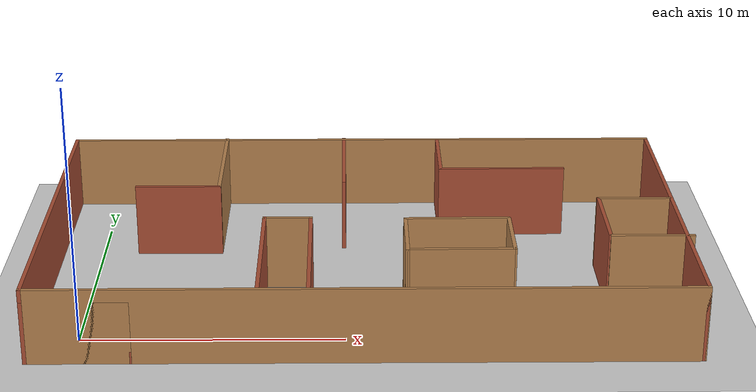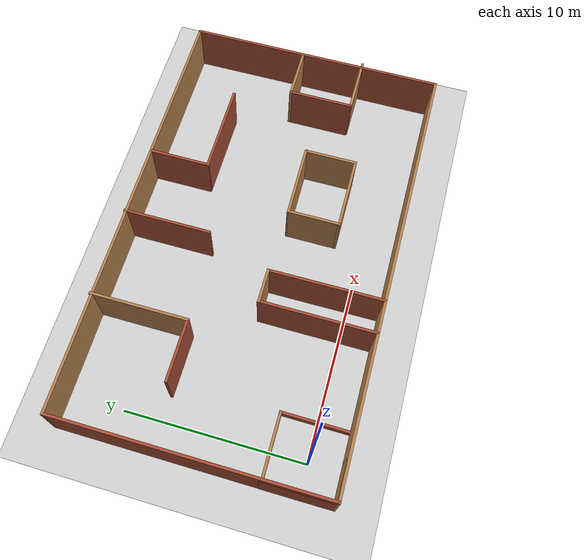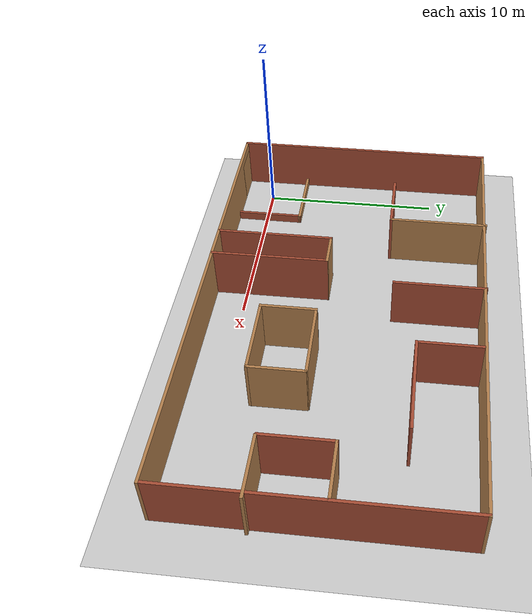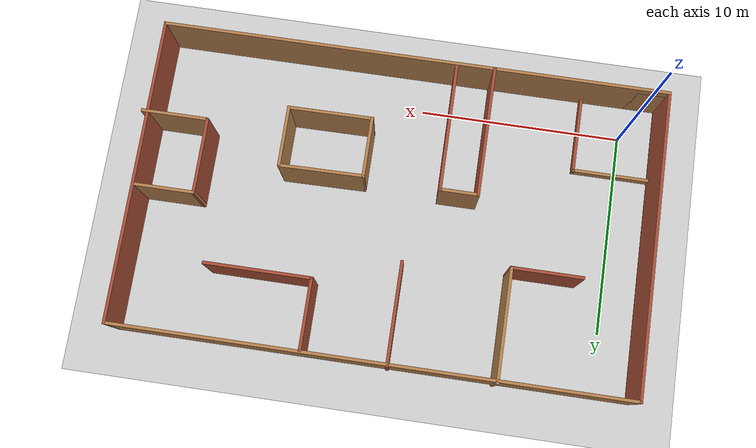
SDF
<sdf version="1.6">
 <world name="default">
  <light name="sun" type="directional">
   <pose>0 0 10 0 -0 0</pose>
   <diffuse>0.8 0.8 0.8 1</diffuse>
   <specular>0.2 0.2 0.2 1</specular>
   <attenuation>
    <range>1000</range>
    <constant>0.9</constant>
    <linear>0.01</linear>
    <quadratic>0.001</quadratic>
   </attenuation>
   <direction>-0.5 0.1 -0.9</direction>
  </light>
  <model name="ground_plane">
   <static>1</static>
   <link name="link">
    <collision name="collision">
     <geometry><plane><normal>0 0 1</normal><size>100 100</size></plane></geometry>
     <surface>
      <contact><collide_bitmask>65535</collide_bitmask></contact>
      <friction><ode><mu>100</mu><mu2>50</mu2></ode></friction>
     </surface>
    </collision>
    <visual name="visual">
     <cast_shadows>0</cast_shadows>
     <geometry><plane><normal>0 0 1</normal><size>100 100</size></plane></geometry>
     <material>
      <script><uri>file://media/materials/scripts/gazebo.material</uri><name>Gazebo/Grey</name></script>
     </material>
    </visual>
   </link>
  </model>
  <gravity>0 0 -9.8</gravity>
  <magnetic_field>6e-06 2.3e-05 -4.2e-05</magnetic_field>
  <atmosphere type="adiabatic"/>
  <physics name="default_physics" default="0" type="ode">
   <ode>
    <solver>
     <type>quick</type>
     <iters>10</iters>
     <sor>1.3</sor>
     <use_dynamic_moi_rescaling>0</use_dynamic_moi_rescaling>
    </solver>
    <constraints>
     <cfm>0</cfm>
     <erp>0.2</erp>
     <contact_max_correcting_vel>100</contact_max_correcting_vel>
     <contact_surface_layer>0.001</contact_surface_layer>
    </constraints>
   </ode>
   <max_step_size>0.004</max_step_size>
   <real_time_factor>1</real_time_factor>
   <real_time_update_rate>250</real_time_update_rate>
  </physics>
  <scene><ambient>0.4 0.4 0.4 1</ambient><background>0.7 0.7 0.7 1</background><shadows>1</shadows></scene>
  <spherical_coordinates>
   <surface_model>EARTH_WGS84</surface_model>
   <latitude_deg>0</latitude_deg>
   <longitude_deg>0</longitude_deg>
   <elevation>0</elevation>
   <heading_deg>0</heading_deg>
  </spherical_coordinates>
  <model name="explore2">
   <pose>10.808 5.68041 0 0 -0 0</pose>
   <link name="Wall_10">
    <collision name="Wall_10_Collision">
     <geometry><box><size>3.9659 0.15 2.5</size></box></geometry>
     <pose>0 0 1.25 0 -0 0</pose>
    </collision>
    <visual name="Wall_10_Visual">
     <pose>0 0 1.25 0 -0 0</pose>
     <geometry><box><size>3.9659 0.15 2.5</size></box></geometry>
     <material>
      <script><uri>file://media/materials/scripts/gazebo.material</uri><name>Gazebo/Bricks</name></script>
      <ambient>1 1 1 1</ambient>
     </material>
     <meta><layer>0</layer></meta>
    </visual>
    <pose>-12.5434 -5.55956 0 0 -0 1.57327</pose>
   </link>
   <link name="Wall_16">
    <collision name="Wall_16_Collision">
     <geometry><box><size>25 0.15 3</size></box></geometry>
     <pose>0 0 1.5 0 -0 0</pose>
    </collision>
    <visual name="Wall_16_Visual">
     <pose>0 0 1.5 0 -0 0</pose>
     <geometry><box><size>25 0.15 3</size></box></geometry>
     <material>
      <script><uri>file://media/materials/scripts/gazebo.material</uri><name>Gazebo/Wood</name></script>
      <ambient>1 1 1 1</ambient>
     </material>
     <meta><layer>0</layer></meta>
    </visual>
    <pose>-0.11382 -7.46731 0 0 -0 0</pose>
   </link>
   <link name="Wall_23">
    <collision name="Wall_23_Collision">
     <geometry><box><size>15 0.15 3</size></box></geometry>
     <pose>0 0 1.5 0 -0 0</pose>
    </collision>
    <visual name="Wall_23_Visual">
     <pose>0 0 1.5 0 -0 0</pose>
     <geometry><box><size>15 0.15 3</size></box></geometry>
     <material>
      <script><uri>file://media/materials/scripts/gazebo.material</uri><name>Gazebo/Bricks</name></script>
      <ambient>1 1 1 1</ambient>
     </material>
     <meta><layer>0</layer></meta>
    </visual>
    <pose>12.3111 -0.042311 0 0 -0 1.5708</pose>
   </link>
   <link name="Wall_25">
    <collision name="Wall_25_Collision">
     <geometry><box><size>25 0.15 3</size></box></geometry>
     <pose>0 0 1.5 0 -0 0</pose>
    </collision>
    <visual name="Wall_25_Visual">
     <pose>0 0 1.5 0 -0 0</pose>
     <geometry><box><size>25 0.15 3</size></box></geometry>
     <material>
      <script><uri>file://media/materials/scripts/gazebo.material</uri><name>Gazebo/Wood</name></script>
      <ambient>1 1 1 1</ambient>
     </material>
     <meta><layer>0</layer></meta>
    </visual>
    <pose>-0.11382 7.38269 0 0 -0 3.14159</pose>
   </link>
   <link name="Wall_27">
    <collision name="Wall_27_Collision">
     <geometry><box><size>15 0.15 3</size></box></geometry>
     <pose>0 0 1.5 0 -0 0</pose>
    </collision>
    <visual name="Wall_27_Visual">
     <pose>0 0 1.5 0 -0 0</pose>
     <geometry><box><size>15 0.15 3</size></box></geometry>
     <material>
      <script><uri>file://media/materials/scripts/gazebo.material</uri><name>Gazebo/Bricks</name></script>
      <ambient>1 1 1 1</ambient>
     </material>
     <meta><layer>0</layer></meta>
    </visual>
    <pose>-12.5387 -0.042311 0 0 -0 -1.5708</pose>
   </link>
   <link name="Wall_29">
    <collision name="Wall_29_Collision">
     <geometry><box><size>6.45734 0.15 3</size></box></geometry>
     <pose>0 0 1.5 0 -0 0</pose>
    </collision>
    <visual name="Wall_29_Visual">
     <pose>0 0 1.5 0 -0 0</pose>
     <geometry><box><size>6.45734 0.15 3</size></box></geometry>
     <material>
      <script><uri>file://media/materials/scripts/gazebo.material</uri><name>Gazebo/Bricks</name></script>
      <ambient>1 1 1 1</ambient>
     </material>
     <meta><layer>0</layer></meta>
    </visual>
    <pose>-4.0012 -4.26931 0 0 -0 1.57096</pose>
   </link>
   <link name="Wall_30">
    <collision name="Wall_30_Collision">
     <geometry><box><size>1.97366 0.15 3</size></box></geometry>
     <pose>0 0 1.5 0 -0 0</pose>
    </collision>
    <visual name="Wall_30_Visual">
     <pose>0 0 1.5 0 -0 0</pose>
     <geometry><box><size>1.97366 0.15 3</size></box></geometry>
     <material>
      <script><uri>file://media/materials/scripts/gazebo.material</uri><name>Gazebo/Wood</name></script>
      <ambient>1 1 1 1</ambient>
     </material>
     <meta><layer>0</layer></meta>
    </visual>
    <pose>-3.08969 -1.11531 0 0 -0 0</pose>
   </link>
   <link name="Wall_31">
    <collision name="Wall_31_Collision">
     <geometry><box><size>6.45734 0.15 3</size></box></geometry>
     <pose>0 0 1.5 0 -0 0</pose>
    </collision>
    <visual name="Wall_31_Visual">
     <pose>0 0 1.5 0 -0 0</pose>
     <geometry><box><size>6.45734 0.15 3</size></box></geometry>
     <material>
      <script><uri>file://media/materials/scripts/gazebo.material</uri><name>Gazebo/Bricks</name></script>
      <ambient>1 1 1 1</ambient>
     </material>
     <meta><layer>0</layer></meta>
    </visual>
    <pose>-2.16419 -4.26931 0 0 -0 -1.56652</pose>
   </link>
   <link name="Wall_33">
    <collision name="Wall_33_Collision">
     <geometry><box><size>5.5 0.15 3</size></box></geometry>
     <pose>0 0 1.5 0 -0 0</pose>
    </collision>
    <visual name="Wall_33_Visual">
     <pose>0 0 1.5 0 -0 0</pose>
     <geometry><box><size>5.5 0.15 3</size></box></geometry>
     <material>
      <script><uri>file://media/materials/scripts/gazebo.material</uri><name>Gazebo/Wood</name></script>
      <ambient>1 1 1 1</ambient>
     </material>
     <meta><layer>0</layer></meta>
    </visual>
    <pose>-5.9947 4.79269 0 0 -0 -1.5708</pose>
   </link>
   <link name="Wall_34">
    <collision name="Wall_34_Collision">
     <geometry><box><size>3.5 0.15 3</size></box></geometry>
     <pose>0 0 1.5 0 -0 0</pose>
    </collision>
    <visual name="Wall_34_Visual">
     <pose>0 0 1.5 0 -0 0</pose>
     <geometry><box><size>3.5 0.15 3</size></box></geometry>
     <material>
      <script><uri>file://media/materials/scripts/gazebo.material</uri><name>Gazebo/Bricks</name></script>
      <ambient>1 1 1 1</ambient>
     </material>
     <meta><layer>0</layer></meta>
    </visual>
    <pose>-7.66969 2.11769 0 0 -0 3.14159</pose>
   </link>
   <link name="Wall_38">
    <collision name="Wall_38_Collision">
     <geometry><box><size>3 0.15 3</size></box></geometry>
     <pose>0 0 1.5 0 -0 0</pose>
    </collision>
    <visual name="Wall_38_Visual">
     <pose>0 0 1.5 0 -0 0</pose>
     <geometry><box><size>3 0.15 3</size></box></geometry>
     <material>
      <script><uri>file://media/materials/scripts/gazebo.material</uri><name>Gazebo/Wood</name></script>
      <ambient>1 1 1 1</ambient>
     </material>
     <meta><layer>0</layer></meta>
    </visual>
    <pose>5.59631 -2.65031 0 0 -0 -1.5708</pose>
   </link>
   <link name="Wall_4">
    <collision name="Wall_4_Collision">
     <geometry><box><size>4 0.15 0.5</size></box></geometry>
     <pose>0 0 0.25 0 -0 0</pose>
    </collision>
    <visual name="Wall_4_Visual">
     <pose>0 0 0.25 0 -0 0</pose>
     <geometry><box><size>4 0.15 0.5</size></box></geometry>
     <material>
      <script><uri>file://media/materials/scripts/gazebo.material</uri><name>Gazebo/Wood</name></script>
      <ambient>1 1 1 1</ambient>
     </material>
     <meta><layer>0</layer></meta>
    </visual>
    <pose>-10.6116 -3.65181 0 0 -0 0</pose>
   </link>
   <link name="Wall_40">
    <collision name="Wall_40_Collision">
     <geometry><box><size>5 0.15 3</size></box></geometry>
     <pose>0 0 1.5 0 -0 0</pose>
    </collision>
    <visual name="Wall_40_Visual">
     <pose>0 0 1.5 0 -0 0</pose>
     <geometry><box><size>5 0.15 3</size></box></geometry>
     <material>
      <script><uri>file://media/materials/scripts/gazebo.material</uri><name>Gazebo/Bricks</name></script>
      <ambient>1 1 1 1</ambient>
     </material>
     <meta><layer>0</layer></meta>
    </visual>
    <pose>-0.889695 5.01769 0 0 -0 -1.5708</pose>
   </link>
   <link name="Wall_42">
    <collision name="Wall_42_Collision">
     <geometry><box><size>4.16537 0.15 3</size></box></geometry>
     <pose>0 0 1.5 0 -0 0</pose>
    </collision>
    <visual name="Wall_42_Visual">
     <pose>0 0 1.5 0 -0 0</pose>
     <geometry><box><size>4.16537 0.15 3</size></box></geometry>
     <material>
      <script><uri>file://media/materials/scripts/gazebo.material</uri><name>Gazebo/Wood</name></script>
      <ambient>1 1 1 1</ambient>
     </material>
     <meta><layer>0</layer></meta>
    </visual>
    <pose>3.54181 -1.19781 0 0 -0 0.013698</pose>
   </link>
   <link name="Wall_44">
    <collision name="Wall_44_Collision">
     <geometry><box><size>3.25 0.15 3</size></box></geometry>
     <pose>0 0 1.5 0 -0 0</pose>
    </collision>
    <visual name="Wall_44_Visual">
     <pose>0 0 1.5 0 -0 0</pose>
     <geometry><box><size>3.25 0.15 3</size></box></geometry>
     <material>
      <script><uri>file://media/materials/scripts/gazebo.material</uri><name>Gazebo/Wood</name></script>
      <ambient>1 1 1 1</ambient>
     </material>
     <meta><layer>0</layer></meta>
    </visual>
    <pose>10.9983 -2.92131 0 0 -0 3.14159</pose>
   </link>
   <link name="Wall_47">
    <collision name="Wall_47_Collision">
     <geometry><box><size>3 0.15 3</size></box></geometry>
     <pose>0 0 1.5 0 -0 0</pose>
    </collision>
    <visual name="Wall_47_Visual">
     <pose>0 0 1.5 0 -0 0</pose>
     <geometry><box><size>3 0.15 3</size></box></geometry>
     <material>
      <script><uri>file://media/materials/scripts/gazebo.material</uri><name>Gazebo/Wood</name></script>
      <ambient>1 1 1 1</ambient>
     </material>
     <meta><layer>0</layer></meta>
    </visual>
    <pose>10.8013 0.731689 0 0 -0 0</pose>
   </link>
   <link name="Wall_49">
    <collision name="Wall_49_Collision">
     <geometry><box><size>3.5 0.15 3</size></box></geometry>
     <pose>0 0 1.5 0 -0 0</pose>
    </collision>
    <visual name="Wall_49_Visual">
     <pose>0 0 1.5 0 -0 0</pose>
     <geometry><box><size>3.5 0.15 3</size></box></geometry>
     <material>
      <script><uri>file://media/materials/scripts/gazebo.material</uri><name>Gazebo/Bricks</name></script>
      <ambient>1 1 1 1</ambient>
     </material>
     <meta><layer>0</layer></meta>
    </visual>
    <pose>3.1703 5.63769 0 0 -0 -1.5708</pose>
   </link>
   <link name="Wall_51">
    <collision name="Wall_51_Collision">
     <geometry><box><size>5.25 0.15 3</size></box></geometry>
     <pose>0 0 1.5 0 -0 0</pose>
    </collision>
    <visual name="Wall_51_Visual">
     <pose>0 0 1.5 0 -0 0</pose>
     <geometry><box><size>5.25 0.15 3</size></box></geometry>
     <material>
      <script><uri>file://media/materials/scripts/gazebo.material</uri><name>Gazebo/Bricks</name></script>
      <ambient>1 1 1 1</ambient>
     </material>
     <meta><layer>0</layer></meta>
    </visual>
    <pose>5.72031 3.96269 0 0 -0 0</pose>
   </link>
   <link name="Wall_53">
    <collision name="Wall_53_Collision">
     <geometry><box><size>3.75 0.15 3</size></box></geometry>
     <pose>0 0 1.5 0 -0 0</pose>
    </collision>
    <visual name="Wall_53_Visual">
     <pose>0 0 1.5 0 -0 0</pose>
     <geometry><box><size>3.75 0.15 3</size></box></geometry>
     <material>
      <script><uri>file://media/materials/scripts/gazebo.material</uri><name>Gazebo/Bricks</name></script>
      <ambient>1 1 1 1</ambient>
     </material>
     <meta><layer>0</layer></meta>
    </visual>
    <pose>9.37631 -1.06831 0 0 -0 -1.5708</pose>
   </link>
   <link name="Wall_58">
    <collision name="Wall_58_Collision">
     <geometry><box><size>4.21289 0.15 3</size></box></geometry>
     <pose>0 0 1.5 0 -0 0</pose>
    </collision>
    <visual name="Wall_58_Visual">
     <pose>0 0 1.5 0 -0 0</pose>
     <geometry><box><size>4.21289 0.15 3</size></box></geometry>
     <material>
      <script><uri>file://media/materials/scripts/gazebo.material</uri><name>Gazebo/Wood</name></script>
      <ambient>1 1 1 1</ambient>
     </material>
     <meta><layer>0</layer></meta>
    </visual>
    <pose>3.5653 -4.08831 0 0 -0 -3.13519</pose>
   </link>
   <link name="Wall_59">
    <collision name="Wall_59_Collision">
     <geometry><box><size>3.026 0.15 3</size></box></geometry>
     <pose>0 0 1.5 0 -0 0</pose>
    </collision>
    <visual name="Wall_59_Visual">
     <pose>0 0 1.5 0 -0 0</pose>
     <geometry><box><size>3.026 0.15 3</size></box></geometry>
     <material>
      <script><uri>file://media/materials/scripts/gazebo.material</uri><name>Gazebo/Wood</name></script>
      <ambient>1 1 1 1</ambient>
     </material>
     <meta><layer>0</layer></meta>
    </visual>
    <pose>1.53431 -2.66331 0 0 -0 1.5708</pose>
   </link>
   <link name="Wall_6">
    <collision name="Wall_6_Collision">
     <geometry><box><size>3.96553 0.15 0.5</size></box></geometry>
     <pose>0 0 0.25 0 -0 0</pose>
    </collision>
    <visual name="Wall_6_Visual">
     <pose>0 0 0.25 0 -0 0</pose>
     <geometry><box><size>3.96553 0.15 0.5</size></box></geometry>
     <material>
      <script><uri>file://media/materials/scripts/gazebo.material</uri><name>Gazebo/Bricks</name></script>
      <ambient>1 1 1 1</ambient>
     </material>
     <meta><layer>0</layer></meta>
    </visual>
    <pose>-8.6936 -5.55956 0 0 -0 -1.57445</pose>
   </link>
   <link name="Wall_9">
    <collision name="Wall_9_Collision">
     <geometry><box><size>3.98837 0.15 2.5</size></box></geometry>
     <pose>0 0 1.25 0 -0 0</pose>
    </collision>
    <visual name="Wall_9_Visual">
     <pose>0 0 1.25 0 -0 0</pose>
     <geometry><box><size>3.98837 0.15 2.5</size></box></geometry>
     <material>
      <script><uri>file://media/materials/scripts/gazebo.material</uri><name>Gazebo/Wood</name></script>
      <ambient>1 1 1 1</ambient>
     </material>
     <meta><layer>0</layer></meta>
    </visual>
    <pose>-10.6196 -7.46731 0 0 -0 3.14159</pose>
   </link>
   <static>1</static>
  </model>
 </world>
</sdf>
